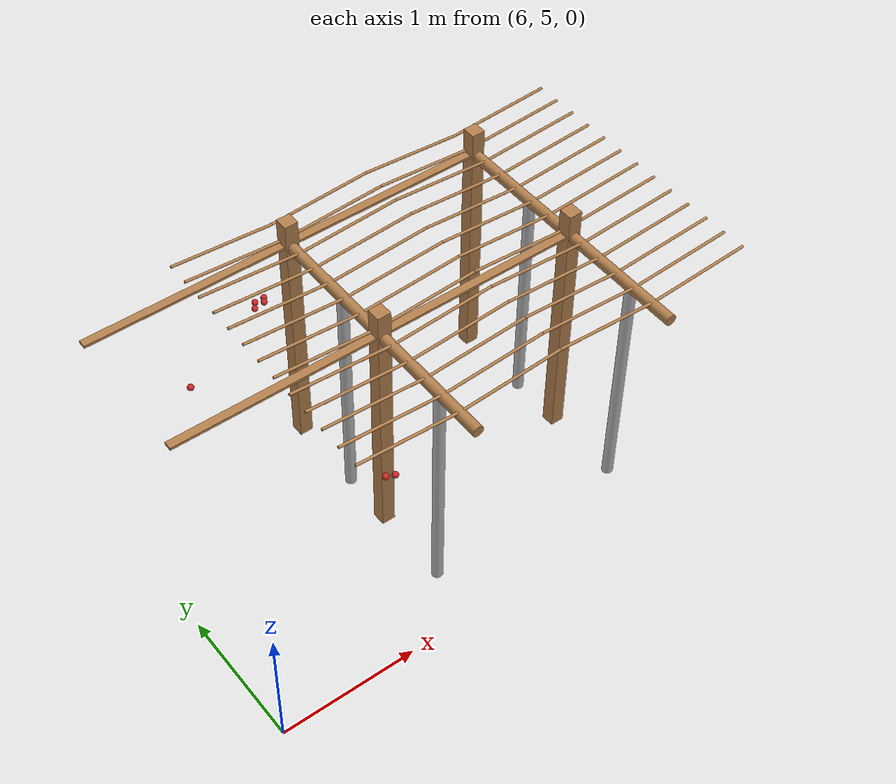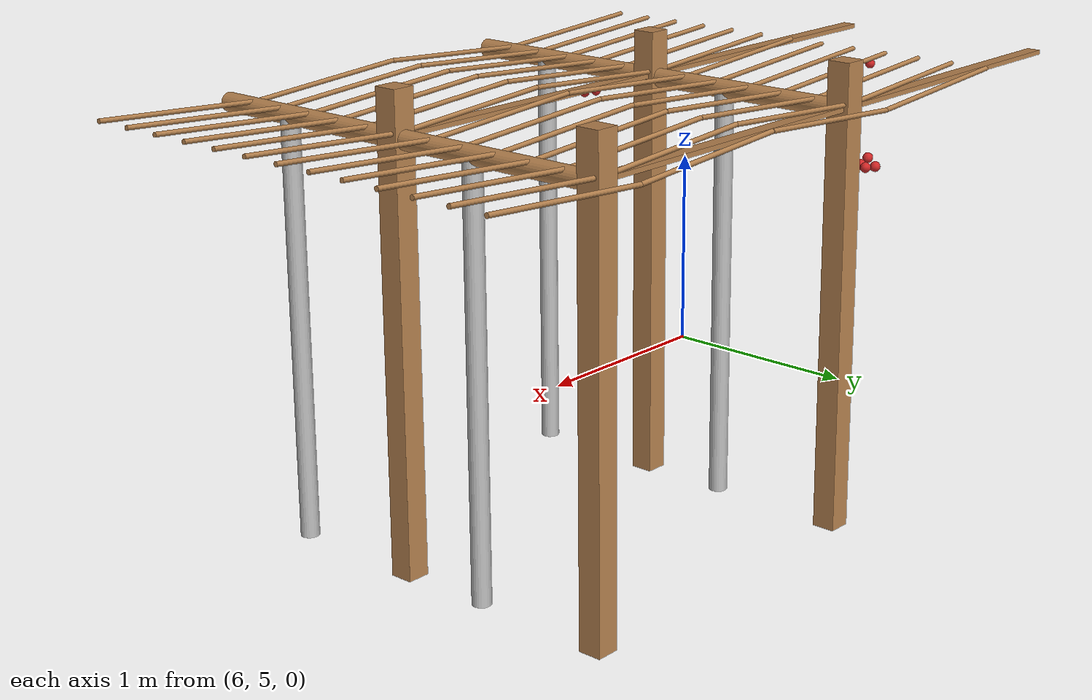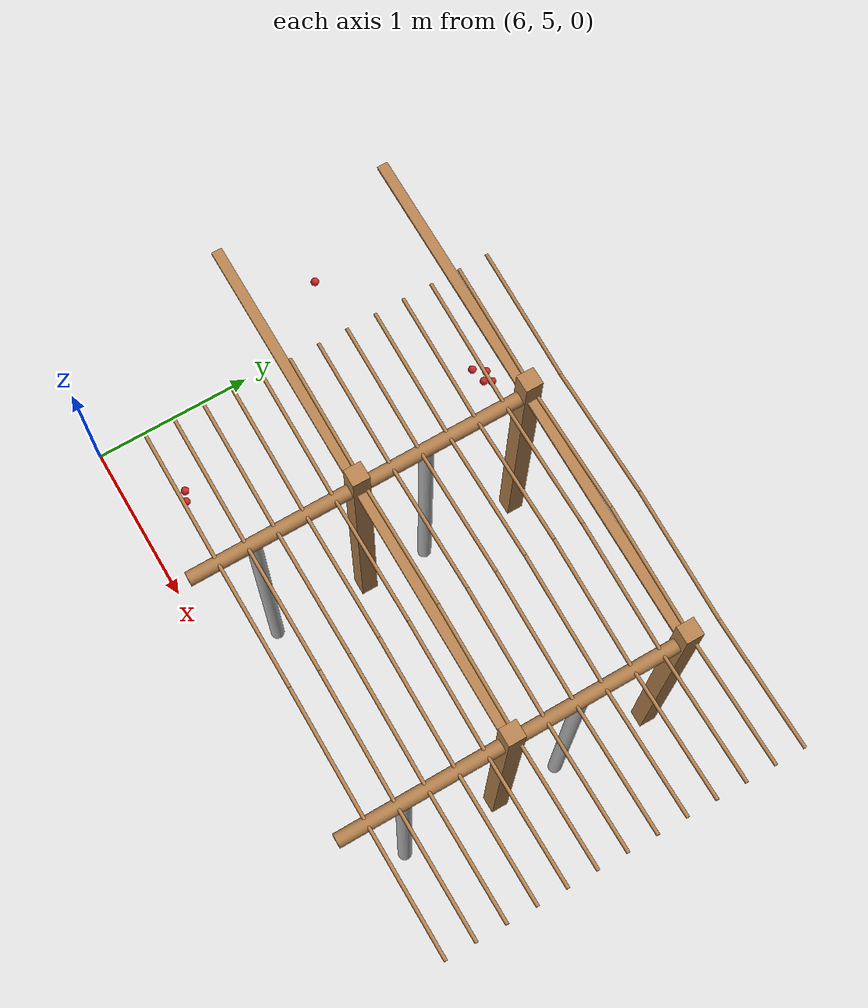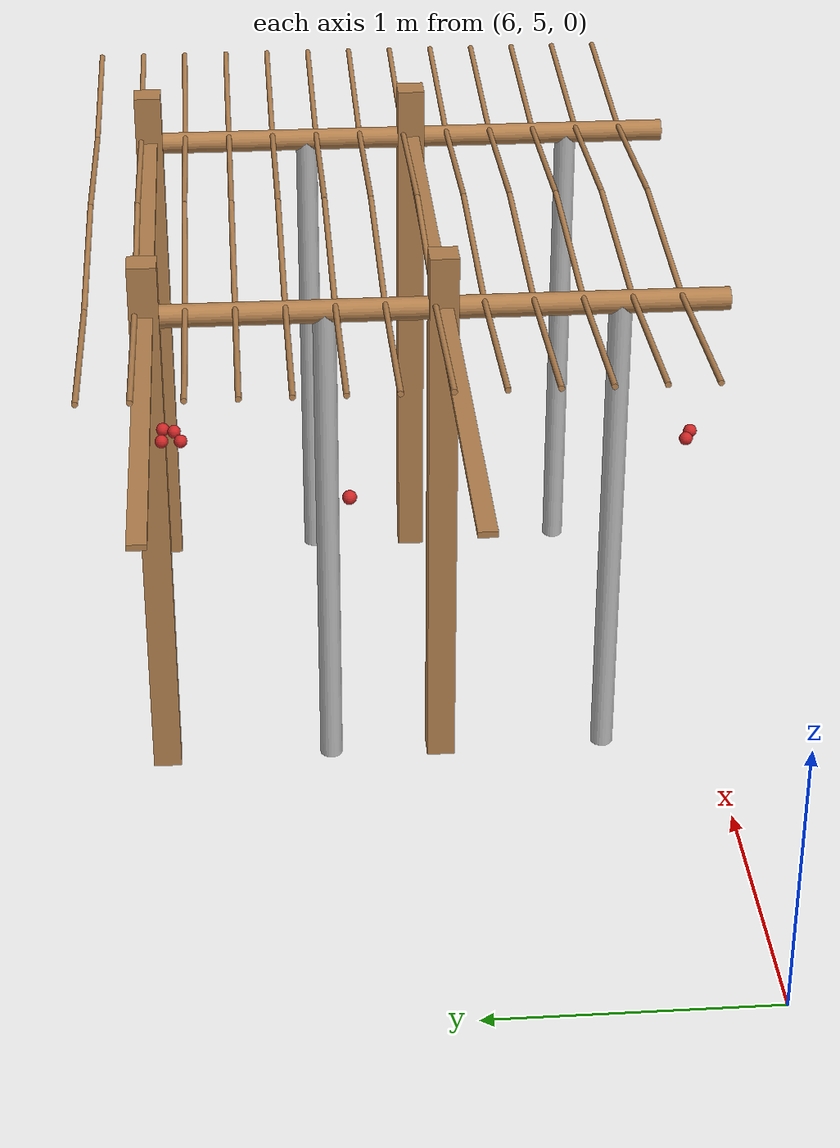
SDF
<sdf version="1.4">
 <model name="pergola">
  <include><name>post_61</name><pose>7.5 6.0 0 0 0 0</pose><uri>model://post</uri></include>
  <include><name>post_62</name><pose>7.5 7.0 0 0 0 0</pose><uri>model://post</uri></include>
  <include><name>post_72</name><pose>9.0 6.0 0 0 0 0</pose><uri>model://post</uri></include>
  <include><name>post_73</name><pose>9.0 7.0 0 0 0 0</pose><uri>model://post</uri></include>
  <link name="beam_50">
   <pose>6.75 6.0 1.81 0 0 0</pose>
   <collision name="collision"><geometry><box><size>1.5 0.06 0.02</size></box></geometry></collision>
   <visual name="visual">
    <geometry><box><size>1.5 0.06 0.02</size></box></geometry>
    <material><script><name>Gazebo/Wood</name></script></material>
   </visual>
   <inertial>
    <mass>5</mass>
    <inertia>
     <ixx>0.0016666666666666668</ixx>
     <ixy>0.0</ixy>
     <ixz>0.0</ixz>
     <iyy>0.9390000000000001</iyy>
     <iyz>0.0</iyz>
     <izz>0.9376666666666665</izz>
    </inertia>
   </inertial>
  </link>
  <link name="beam_51">
   <pose>6.75 7.0 1.81 0 0 0</pose>
   <collision name="collision"><geometry><box><size>1.5 0.06 0.02</size></box></geometry></collision>
   <visual name="visual">
    <geometry><box><size>1.5 0.06 0.02</size></box></geometry>
    <material><script><name>Gazebo/Wood</name></script></material>
   </visual>
   <inertial>
    <mass>5</mass>
    <inertia>
     <ixx>0.0016666666666666668</ixx>
     <ixy>0.0</ixy>
     <ixz>0.0</ixz>
     <iyy>0.9390000000000001</iyy>
     <iyz>0.0</iyz>
     <izz>0.9376666666666665</izz>
    </inertia>
   </inertial>
  </link>
  <link name="beam_61">
   <pose>8.25 6.0 1.81 0 0 0</pose>
   <collision name="collision"><geometry><box><size>1.5 0.06 0.02</size></box></geometry></collision>
   <visual name="visual">
    <geometry><box><size>1.5 0.06 0.02</size></box></geometry>
    <material><script><name>Gazebo/Wood</name></script></material>
   </visual>
   <inertial>
    <mass>5</mass>
    <inertia>
     <ixx>0.0016666666666666668</ixx>
     <ixy>0.0</ixy>
     <ixz>0.0</ixz>
     <iyy>0.9390000000000001</iyy>
     <iyz>0.0</iyz>
     <izz>0.9376666666666665</izz>
    </inertia>
   </inertial>
  </link>
  <link name="beam_62">
   <pose>8.25 7.0 1.81 0 0 0</pose>
   <collision name="collision"><geometry><box><size>1.5 0.06 0.02</size></box></geometry></collision>
   <visual name="visual">
    <geometry><box><size>1.5 0.06 0.02</size></box></geometry>
    <material><script><name>Gazebo/Wood</name></script></material>
   </visual>
   <inertial>
    <mass>5</mass>
    <inertia>
     <ixx>0.0016666666666666668</ixx>
     <ixy>0.0</ixy>
     <ixz>0.0</ixz>
     <iyy>0.9390000000000001</iyy>
     <iyz>0.0</iyz>
     <izz>0.9376666666666665</izz>
    </inertia>
   </inertial>
  </link>
  <include><name>tree_55</name><pose>7.5 5.4 0 0 0 0</pose><uri>model://tree_trunk</uri></include>
  <include><name>tree_56</name><pose>7.5 6.4 0 0 0 0</pose><uri>model://tree_trunk</uri></include>
  <include><name>tree_65</name><pose>9.0 5.4 0 0 0 0</pose><uri>model://tree_trunk</uri></include>
  <include><name>tree_66</name><pose>9.0 6.4 0 0 0 0</pose><uri>model://tree_trunk</uri></include>
  <link name="baseBranch_55">
   <pose>7.5 5.5 1.8 1.5707963267948966 0 0</pose>
   <collision name="collision">
    <geometry><cylinder><radius>0.04</radius><length>0.94</length></cylinder></geometry>
   </collision>
   <visual name="visual">
    <geometry><cylinder><radius>0.04</radius><length>0.94</length></cylinder></geometry>
    <material><script><name>Gazebo/WoodFloor</name></script></material>
   </visual>
   <inertial>
    <mass>10</mass>
    <inertia>
     <ixx>0.7403333333333334</ixx>
     <ixy>0.0</ixy>
     <ixz>0.0</ixz>
     <iyy>0.7403333333333334</iyy>
     <iyz>0.0</iyz>
     <izz>0.008</izz>
    </inertia>
   </inertial>
  </link>
  <link name="baseBranch_56">
   <pose>7.5 6.5 1.8 1.5707963267948966 0 0</pose>
   <collision name="collision">
    <geometry><cylinder><radius>0.04</radius><length>0.94</length></cylinder></geometry>
   </collision>
   <visual name="visual">
    <geometry><cylinder><radius>0.04</radius><length>0.94</length></cylinder></geometry>
    <material><script><name>Gazebo/WoodFloor</name></script></material>
   </visual>
   <inertial>
    <mass>10</mass>
    <inertia>
     <ixx>0.7403333333333334</ixx>
     <ixy>0.0</ixy>
     <ixz>0.0</ixz>
     <iyy>0.7403333333333334</iyy>
     <iyz>0.0</iyz>
     <izz>0.008</izz>
    </inertia>
   </inertial>
  </link>
  <link name="baseBranch_65">
   <pose>9.0 5.5 1.8 1.5707963267948966 0 0</pose>
   <collision name="collision">
    <geometry><cylinder><radius>0.04</radius><length>0.94</length></cylinder></geometry>
   </collision>
   <visual name="visual">
    <geometry><cylinder><radius>0.04</radius><length>0.94</length></cylinder></geometry>
    <material><script><name>Gazebo/WoodFloor</name></script></material>
   </visual>
   <inertial>
    <mass>10</mass>
    <inertia>
     <ixx>0.7403333333333334</ixx>
     <ixy>0.0</ixy>
     <ixz>0.0</ixz>
     <iyy>0.7403333333333334</iyy>
     <iyz>0.0</iyz>
     <izz>0.008</izz>
    </inertia>
   </inertial>
  </link>
  <link name="baseBranch_66">
   <pose>9.0 6.5 1.8 1.5707963267948966 0 0</pose>
   <collision name="collision">
    <geometry><cylinder><radius>0.04</radius><length>0.94</length></cylinder></geometry>
   </collision>
   <visual name="visual">
    <geometry><cylinder><radius>0.04</radius><length>0.94</length></cylinder></geometry>
    <material><script><name>Gazebo/WoodFloor</name></script></material>
   </visual>
   <inertial>
    <mass>10</mass>
    <inertia>
     <ixx>0.7403333333333334</ixx>
     <ixy>0.0</ixy>
     <ixz>0.0</ixz>
     <iyy>0.7403333333333334</iyy>
     <iyz>0.0</iyz>
     <izz>0.008</izz>
    </inertia>
   </inertial>
  </link>
  <link name="vine_543">
   <pose>7.125 5.196666666666666 1.85 0 -1.5042281630190728 0</pose>
   <collision name="collision">
    <geometry><cylinder><radius>0.01</radius><length>0.7516648189186453</length></cylinder></geometry>
   </collision>
   <visual name="visual">
    <geometry><cylinder><radius>0.01</radius><length>0.7516648189186453</length></cylinder></geometry>
    <material><script><name>Gazebo/WoodFloor</name></script></material>
   </visual>
   <inertial>
    <mass>5</mass>
    <inertia>
     <ixx>0.23554166666666657</ixx>
     <ixy>0.0</ixy>
     <ixz>0.0</ixz>
     <iyy>0.23554166666666657</iyy>
     <iyz>0.0</iyz>
     <izz>0.00025</izz>
    </inertia>
   </inertial>
  </link>
  <link name="vine_545">
   <pose>7.125 5.363333333333333 1.85 0 -1.5042281630190728 0</pose>
   <collision name="collision">
    <geometry><cylinder><radius>0.01</radius><length>0.7516648189186453</length></cylinder></geometry>
   </collision>
   <visual name="visual">
    <geometry><cylinder><radius>0.01</radius><length>0.7516648189186453</length></cylinder></geometry>
    <material><script><name>Gazebo/WoodFloor</name></script></material>
   </visual>
   <inertial>
    <mass>5</mass>
    <inertia>
     <ixx>0.23554166666666657</ixx>
     <ixy>0.0</ixy>
     <ixz>0.0</ixz>
     <iyy>0.23554166666666657</iyy>
     <iyz>0.0</iyz>
     <izz>0.00025</izz>
    </inertia>
   </inertial>
  </link>
  <link name="vine_547">
   <pose>7.125 5.53 1.85 0 -1.5042281630190728 0</pose>
   <collision name="collision">
    <geometry><cylinder><radius>0.01</radius><length>0.7516648189186453</length></cylinder></geometry>
   </collision>
   <visual name="visual">
    <geometry><cylinder><radius>0.01</radius><length>0.7516648189186453</length></cylinder></geometry>
    <material><script><name>Gazebo/WoodFloor</name></script></material>
   </visual>
   <inertial>
    <mass>5</mass>
    <inertia>
     <ixx>0.23554166666666657</ixx>
     <ixy>0.0</ixy>
     <ixz>0.0</ixz>
     <iyy>0.23554166666666657</iyy>
     <iyz>0.0</iyz>
     <izz>0.00025</izz>
    </inertia>
   </inertial>
  </link>
  <link name="vine_549">
   <pose>7.125 5.696666666666666 1.85 0 -1.5042281630190728 0</pose>
   <collision name="collision">
    <geometry><cylinder><radius>0.01</radius><length>0.7516648189186453</length></cylinder></geometry>
   </collision>
   <visual name="visual">
    <geometry><cylinder><radius>0.01</radius><length>0.7516648189186453</length></cylinder></geometry>
    <material><script><name>Gazebo/WoodFloor</name></script></material>
   </visual>
   <inertial>
    <mass>5</mass>
    <inertia>
     <ixx>0.23554166666666657</ixx>
     <ixy>0.0</ixy>
     <ixz>0.0</ixz>
     <iyy>0.23554166666666657</iyy>
     <iyz>0.0</iyz>
     <izz>0.00025</izz>
    </inertia>
   </inertial>
  </link>
  <link name="vine_551">
   <pose>7.125 5.863333333333333 1.85 0 -1.5042281630190728 0</pose>
   <collision name="collision">
    <geometry><cylinder><radius>0.01</radius><length>0.7516648189186453</length></cylinder></geometry>
   </collision>
   <visual name="visual">
    <geometry><cylinder><radius>0.01</radius><length>0.7516648189186453</length></cylinder></geometry>
    <material><script><name>Gazebo/WoodFloor</name></script></material>
   </visual>
   <inertial>
    <mass>5</mass>
    <inertia>
     <ixx>0.23554166666666657</ixx>
     <ixy>0.0</ixy>
     <ixz>0.0</ixz>
     <iyy>0.23554166666666657</iyy>
     <iyz>0.0</iyz>
     <izz>0.00025</izz>
    </inertia>
   </inertial>
  </link>
  <link name="vine_553">
   <pose>7.125 6.03 1.85 0 -1.5042281630190728 0</pose>
   <collision name="collision">
    <geometry><cylinder><radius>0.01</radius><length>0.7516648189186453</length></cylinder></geometry>
   </collision>
   <visual name="visual">
    <geometry><cylinder><radius>0.01</radius><length>0.7516648189186453</length></cylinder></geometry>
    <material><script><name>Gazebo/WoodFloor</name></script></material>
   </visual>
   <inertial>
    <mass>5</mass>
    <inertia>
     <ixx>0.23554166666666657</ixx>
     <ixy>0.0</ixy>
     <ixz>0.0</ixz>
     <iyy>0.23554166666666657</iyy>
     <iyz>0.0</iyz>
     <izz>0.00025</izz>
    </inertia>
   </inertial>
  </link>
  <link name="vine_555">
   <pose>7.125 6.196666666666666 1.85 0 -1.5042281630190728 0</pose>
   <collision name="collision">
    <geometry><cylinder><radius>0.01</radius><length>0.7516648189186453</length></cylinder></geometry>
   </collision>
   <visual name="visual">
    <geometry><cylinder><radius>0.01</radius><length>0.7516648189186453</length></cylinder></geometry>
    <material><script><name>Gazebo/WoodFloor</name></script></material>
   </visual>
   <inertial>
    <mass>5</mass>
    <inertia>
     <ixx>0.23554166666666657</ixx>
     <ixy>0.0</ixy>
     <ixz>0.0</ixz>
     <iyy>0.23554166666666657</iyy>
     <iyz>0.0</iyz>
     <izz>0.00025</izz>
    </inertia>
   </inertial>
  </link>
  <link name="vine_557">
   <pose>7.125 6.363333333333333 1.85 0 -1.5042281630190728 0</pose>
   <collision name="collision">
    <geometry><cylinder><radius>0.01</radius><length>0.7516648189186453</length></cylinder></geometry>
   </collision>
   <visual name="visual">
    <geometry><cylinder><radius>0.01</radius><length>0.7516648189186453</length></cylinder></geometry>
    <material><script><name>Gazebo/WoodFloor</name></script></material>
   </visual>
   <inertial>
    <mass>5</mass>
    <inertia>
     <ixx>0.23554166666666657</ixx>
     <ixy>0.0</ixy>
     <ixz>0.0</ixz>
     <iyy>0.23554166666666657</iyy>
     <iyz>0.0</iyz>
     <izz>0.00025</izz>
    </inertia>
   </inertial>
  </link>
  <link name="vine_559">
   <pose>7.125 6.53 1.85 0 -1.5042281630190728 0</pose>
   <collision name="collision">
    <geometry><cylinder><radius>0.01</radius><length>0.7516648189186453</length></cylinder></geometry>
   </collision>
   <visual name="visual">
    <geometry><cylinder><radius>0.01</radius><length>0.7516648189186453</length></cylinder></geometry>
    <material><script><name>Gazebo/WoodFloor</name></script></material>
   </visual>
   <inertial>
    <mass>5</mass>
    <inertia>
     <ixx>0.23554166666666657</ixx>
     <ixy>0.0</ixy>
     <ixz>0.0</ixz>
     <iyy>0.23554166666666657</iyy>
     <iyz>0.0</iyz>
     <izz>0.00025</izz>
    </inertia>
   </inertial>
  </link>
  <link name="vine_561">
   <pose>7.125 6.696666666666666 1.85 0 -1.5042281630190728 0</pose>
   <collision name="collision">
    <geometry><cylinder><radius>0.01</radius><length>0.7516648189186453</length></cylinder></geometry>
   </collision>
   <visual name="visual">
    <geometry><cylinder><radius>0.01</radius><length>0.7516648189186453</length></cylinder></geometry>
    <material><script><name>Gazebo/WoodFloor</name></script></material>
   </visual>
   <inertial>
    <mass>5</mass>
    <inertia>
     <ixx>0.23554166666666657</ixx>
     <ixy>0.0</ixy>
     <ixz>0.0</ixz>
     <iyy>0.23554166666666657</iyy>
     <iyz>0.0</iyz>
     <izz>0.00025</izz>
    </inertia>
   </inertial>
  </link>
  <link name="vine_563">
   <pose>7.125 6.863333333333333 1.85 0 -1.5042281630190728 0</pose>
   <collision name="collision">
    <geometry><cylinder><radius>0.01</radius><length>0.7516648189186453</length></cylinder></geometry>
   </collision>
   <visual name="visual">
    <geometry><cylinder><radius>0.01</radius><length>0.7516648189186453</length></cylinder></geometry>
    <material><script><name>Gazebo/WoodFloor</name></script></material>
   </visual>
   <inertial>
    <mass>5</mass>
    <inertia>
     <ixx>0.23554166666666657</ixx>
     <ixy>0.0</ixy>
     <ixz>0.0</ixz>
     <iyy>0.23554166666666657</iyy>
     <iyz>0.0</iyz>
     <izz>0.00025</izz>
    </inertia>
   </inertial>
  </link>
  <link name="vine_565">
   <pose>7.125 7.03 1.85 0 -1.5042281630190728 0</pose>
   <collision name="collision">
    <geometry><cylinder><radius>0.01</radius><length>0.7516648189186453</length></cylinder></geometry>
   </collision>
   <visual name="visual">
    <geometry><cylinder><radius>0.01</radius><length>0.7516648189186453</length></cylinder></geometry>
    <material><script><name>Gazebo/WoodFloor</name></script></material>
   </visual>
   <inertial>
    <mass>5</mass>
    <inertia>
     <ixx>0.23554166666666657</ixx>
     <ixy>0.0</ixy>
     <ixz>0.0</ixz>
     <iyy>0.23554166666666657</iyy>
     <iyz>0.0</iyz>
     <izz>0.00025</izz>
    </inertia>
   </inertial>
  </link>
  <link name="vine_567">
   <pose>7.125 7.196666666666666 1.85 0 -1.5042281630190728 0</pose>
   <collision name="collision">
    <geometry><cylinder><radius>0.01</radius><length>0.7516648189186453</length></cylinder></geometry>
   </collision>
   <visual name="visual">
    <geometry><cylinder><radius>0.01</radius><length>0.7516648189186453</length></cylinder></geometry>
    <material><script><name>Gazebo/WoodFloor</name></script></material>
   </visual>
   <inertial>
    <mass>5</mass>
    <inertia>
     <ixx>0.23554166666666657</ixx>
     <ixy>0.0</ixy>
     <ixz>0.0</ixz>
     <iyy>0.23554166666666657</iyy>
     <iyz>0.0</iyz>
     <izz>0.00025</izz>
    </inertia>
   </inertial>
  </link>
  <link name="vine_662">
   <pose>7.875 5.196666666666666 1.85 0 1.5042281630190728 0</pose>
   <collision name="collision">
    <geometry><cylinder><radius>0.01</radius><length>0.7516648189186453</length></cylinder></geometry>
   </collision>
   <visual name="visual">
    <geometry><cylinder><radius>0.01</radius><length>0.7516648189186453</length></cylinder></geometry>
    <material><script><name>Gazebo/WoodFloor</name></script></material>
   </visual>
   <inertial>
    <mass>5</mass>
    <inertia>
     <ixx>0.23554166666666657</ixx>
     <ixy>0.0</ixy>
     <ixz>0.0</ixz>
     <iyy>0.23554166666666657</iyy>
     <iyz>0.0</iyz>
     <izz>0.00025</izz>
    </inertia>
   </inertial>
  </link>
  <link name="vine_663">
   <pose>8.625 5.196666666666666 1.85 0 -1.5042281630190728 0</pose>
   <collision name="collision">
    <geometry><cylinder><radius>0.01</radius><length>0.7516648189186453</length></cylinder></geometry>
   </collision>
   <visual name="visual">
    <geometry><cylinder><radius>0.01</radius><length>0.7516648189186453</length></cylinder></geometry>
    <material><script><name>Gazebo/WoodFloor</name></script></material>
   </visual>
   <inertial>
    <mass>5</mass>
    <inertia>
     <ixx>0.23554166666666657</ixx>
     <ixy>0.0</ixy>
     <ixz>0.0</ixz>
     <iyy>0.23554166666666657</iyy>
     <iyz>0.0</iyz>
     <izz>0.00025</izz>
    </inertia>
   </inertial>
  </link>
  <link name="vine_664">
   <pose>7.875 5.363333333333333 1.85 0 1.5042281630190728 0</pose>
   <collision name="collision">
    <geometry><cylinder><radius>0.01</radius><length>0.7516648189186453</length></cylinder></geometry>
   </collision>
   <visual name="visual">
    <geometry><cylinder><radius>0.01</radius><length>0.7516648189186453</length></cylinder></geometry>
    <material><script><name>Gazebo/WoodFloor</name></script></material>
   </visual>
   <inertial>
    <mass>5</mass>
    <inertia>
     <ixx>0.23554166666666657</ixx>
     <ixy>0.0</ixy>
     <ixz>0.0</ixz>
     <iyy>0.23554166666666657</iyy>
     <iyz>0.0</iyz>
     <izz>0.00025</izz>
    </inertia>
   </inertial>
  </link>
  <link name="vine_665">
   <pose>8.625 5.363333333333333 1.85 0 -1.5042281630190728 0</pose>
   <collision name="collision">
    <geometry><cylinder><radius>0.01</radius><length>0.7516648189186453</length></cylinder></geometry>
   </collision>
   <visual name="visual">
    <geometry><cylinder><radius>0.01</radius><length>0.7516648189186453</length></cylinder></geometry>
    <material><script><name>Gazebo/WoodFloor</name></script></material>
   </visual>
   <inertial>
    <mass>5</mass>
    <inertia>
     <ixx>0.23554166666666657</ixx>
     <ixy>0.0</ixy>
     <ixz>0.0</ixz>
     <iyy>0.23554166666666657</iyy>
     <iyz>0.0</iyz>
     <izz>0.00025</izz>
    </inertia>
   </inertial>
  </link>
  <link name="vine_666">
   <pose>7.875 5.53 1.85 0 1.5042281630190728 0</pose>
   <collision name="collision">
    <geometry><cylinder><radius>0.01</radius><length>0.7516648189186453</length></cylinder></geometry>
   </collision>
   <visual name="visual">
    <geometry><cylinder><radius>0.01</radius><length>0.7516648189186453</length></cylinder></geometry>
    <material><script><name>Gazebo/WoodFloor</name></script></material>
   </visual>
   <inertial>
    <mass>5</mass>
    <inertia>
     <ixx>0.23554166666666657</ixx>
     <ixy>0.0</ixy>
     <ixz>0.0</ixz>
     <iyy>0.23554166666666657</iyy>
     <iyz>0.0</iyz>
     <izz>0.00025</izz>
    </inertia>
   </inertial>
  </link>
  <link name="vine_667">
   <pose>8.625 5.53 1.85 0 -1.5042281630190728 0</pose>
   <collision name="collision">
    <geometry><cylinder><radius>0.01</radius><length>0.7516648189186453</length></cylinder></geometry>
   </collision>
   <visual name="visual">
    <geometry><cylinder><radius>0.01</radius><length>0.7516648189186453</length></cylinder></geometry>
    <material><script><name>Gazebo/WoodFloor</name></script></material>
   </visual>
   <inertial>
    <mass>5</mass>
    <inertia>
     <ixx>0.23554166666666657</ixx>
     <ixy>0.0</ixy>
     <ixz>0.0</ixz>
     <iyy>0.23554166666666657</iyy>
     <iyz>0.0</iyz>
     <izz>0.00025</izz>
    </inertia>
   </inertial>
  </link>
  <link name="vine_668">
   <pose>7.875 5.696666666666666 1.85 0 1.5042281630190728 0</pose>
   <collision name="collision">
    <geometry><cylinder><radius>0.01</radius><length>0.7516648189186453</length></cylinder></geometry>
   </collision>
   <visual name="visual">
    <geometry><cylinder><radius>0.01</radius><length>0.7516648189186453</length></cylinder></geometry>
    <material><script><name>Gazebo/WoodFloor</name></script></material>
   </visual>
   <inertial>
    <mass>5</mass>
    <inertia>
     <ixx>0.23554166666666657</ixx>
     <ixy>0.0</ixy>
     <ixz>0.0</ixz>
     <iyy>0.23554166666666657</iyy>
     <iyz>0.0</iyz>
     <izz>0.00025</izz>
    </inertia>
   </inertial>
  </link>
  <link name="vine_669">
   <pose>8.625 5.696666666666666 1.85 0 -1.5042281630190728 0</pose>
   <collision name="collision">
    <geometry><cylinder><radius>0.01</radius><length>0.7516648189186453</length></cylinder></geometry>
   </collision>
   <visual name="visual">
    <geometry><cylinder><radius>0.01</radius><length>0.7516648189186453</length></cylinder></geometry>
    <material><script><name>Gazebo/WoodFloor</name></script></material>
   </visual>
   <inertial>
    <mass>5</mass>
    <inertia>
     <ixx>0.23554166666666657</ixx>
     <ixy>0.0</ixy>
     <ixz>0.0</ixz>
     <iyy>0.23554166666666657</iyy>
     <iyz>0.0</iyz>
     <izz>0.00025</izz>
    </inertia>
   </inertial>
  </link>
  <link name="vine_670">
   <pose>7.875 5.863333333333333 1.85 0 1.5042281630190728 0</pose>
   <collision name="collision">
    <geometry><cylinder><radius>0.01</radius><length>0.7516648189186453</length></cylinder></geometry>
   </collision>
   <visual name="visual">
    <geometry><cylinder><radius>0.01</radius><length>0.7516648189186453</length></cylinder></geometry>
    <material><script><name>Gazebo/WoodFloor</name></script></material>
   </visual>
   <inertial>
    <mass>5</mass>
    <inertia>
     <ixx>0.23554166666666657</ixx>
     <ixy>0.0</ixy>
     <ixz>0.0</ixz>
     <iyy>0.23554166666666657</iyy>
     <iyz>0.0</iyz>
     <izz>0.00025</izz>
    </inertia>
   </inertial>
  </link>
  <link name="vine_671">
   <pose>8.625 5.863333333333333 1.85 0 -1.5042281630190728 0</pose>
   <collision name="collision">
    <geometry><cylinder><radius>0.01</radius><length>0.7516648189186453</length></cylinder></geometry>
   </collision>
   <visual name="visual">
    <geometry><cylinder><radius>0.01</radius><length>0.7516648189186453</length></cylinder></geometry>
    <material><script><name>Gazebo/WoodFloor</name></script></material>
   </visual>
   <inertial>
    <mass>5</mass>
    <inertia>
     <ixx>0.23554166666666657</ixx>
     <ixy>0.0</ixy>
     <ixz>0.0</ixz>
     <iyy>0.23554166666666657</iyy>
     <iyz>0.0</iyz>
     <izz>0.00025</izz>
    </inertia>
   </inertial>
  </link>
  <link name="vine_672">
   <pose>7.875 6.03 1.85 0 1.5042281630190728 0</pose>
   <collision name="collision">
    <geometry><cylinder><radius>0.01</radius><length>0.7516648189186453</length></cylinder></geometry>
   </collision>
   <visual name="visual">
    <geometry><cylinder><radius>0.01</radius><length>0.7516648189186453</length></cylinder></geometry>
    <material><script><name>Gazebo/WoodFloor</name></script></material>
   </visual>
   <inertial>
    <mass>5</mass>
    <inertia>
     <ixx>0.23554166666666657</ixx>
     <ixy>0.0</ixy>
     <ixz>0.0</ixz>
     <iyy>0.23554166666666657</iyy>
     <iyz>0.0</iyz>
     <izz>0.00025</izz>
    </inertia>
   </inertial>
  </link>
  <link name="vine_673">
   <pose>8.625 6.03 1.85 0 -1.5042281630190728 0</pose>
   <collision name="collision">
    <geometry><cylinder><radius>0.01</radius><length>0.7516648189186453</length></cylinder></geometry>
   </collision>
   <visual name="visual">
    <geometry><cylinder><radius>0.01</radius><length>0.7516648189186453</length></cylinder></geometry>
    <material><script><name>Gazebo/WoodFloor</name></script></material>
   </visual>
   <inertial>
    <mass>5</mass>
    <inertia>
     <ixx>0.23554166666666657</ixx>
     <ixy>0.0</ixy>
     <ixz>0.0</ixz>
     <iyy>0.23554166666666657</iyy>
     <iyz>0.0</iyz>
     <izz>0.00025</izz>
    </inertia>
   </inertial>
  </link>
  <link name="vine_674">
   <pose>7.875 6.196666666666666 1.85 0 1.5042281630190728 0</pose>
   <collision name="collision">
    <geometry><cylinder><radius>0.01</radius><length>0.7516648189186453</length></cylinder></geometry>
   </collision>
   <visual name="visual">
    <geometry><cylinder><radius>0.01</radius><length>0.7516648189186453</length></cylinder></geometry>
    <material><script><name>Gazebo/WoodFloor</name></script></material>
   </visual>
   <inertial>
    <mass>5</mass>
    <inertia>
     <ixx>0.23554166666666657</ixx>
     <ixy>0.0</ixy>
     <ixz>0.0</ixz>
     <iyy>0.23554166666666657</iyy>
     <iyz>0.0</iyz>
     <izz>0.00025</izz>
    </inertia>
   </inertial>
  </link>
  <link name="vine_675">
   <pose>8.625 6.196666666666666 1.85 0 -1.5042281630190728 0</pose>
   <collision name="collision">
    <geometry><cylinder><radius>0.01</radius><length>0.7516648189186453</length></cylinder></geometry>
   </collision>
   <visual name="visual">
    <geometry><cylinder><radius>0.01</radius><length>0.7516648189186453</length></cylinder></geometry>
    <material><script><name>Gazebo/WoodFloor</name></script></material>
   </visual>
   <inertial>
    <mass>5</mass>
    <inertia>
     <ixx>0.23554166666666657</ixx>
     <ixy>0.0</ixy>
     <ixz>0.0</ixz>
     <iyy>0.23554166666666657</iyy>
     <iyz>0.0</iyz>
     <izz>0.00025</izz>
    </inertia>
   </inertial>
  </link>
  <link name="vine_676">
   <pose>7.875 6.363333333333333 1.85 0 1.5042281630190728 0</pose>
   <collision name="collision">
    <geometry><cylinder><radius>0.01</radius><length>0.7516648189186453</length></cylinder></geometry>
   </collision>
   <visual name="visual">
    <geometry><cylinder><radius>0.01</radius><length>0.7516648189186453</length></cylinder></geometry>
    <material><script><name>Gazebo/WoodFloor</name></script></material>
   </visual>
   <inertial>
    <mass>5</mass>
    <inertia>
     <ixx>0.23554166666666657</ixx>
     <ixy>0.0</ixy>
     <ixz>0.0</ixz>
     <iyy>0.23554166666666657</iyy>
     <iyz>0.0</iyz>
     <izz>0.00025</izz>
    </inertia>
   </inertial>
  </link>
  <link name="vine_677">
   <pose>8.625 6.363333333333333 1.85 0 -1.5042281630190728 0</pose>
   <collision name="collision">
    <geometry><cylinder><radius>0.01</radius><length>0.7516648189186453</length></cylinder></geometry>
   </collision>
   <visual name="visual">
    <geometry><cylinder><radius>0.01</radius><length>0.7516648189186453</length></cylinder></geometry>
    <material><script><name>Gazebo/WoodFloor</name></script></material>
   </visual>
   <inertial>
    <mass>5</mass>
    <inertia>
     <ixx>0.23554166666666657</ixx>
     <ixy>0.0</ixy>
     <ixz>0.0</ixz>
     <iyy>0.23554166666666657</iyy>
     <iyz>0.0</iyz>
     <izz>0.00025</izz>
    </inertia>
   </inertial>
  </link>
  <link name="vine_678">
   <pose>7.875 6.53 1.85 0 1.5042281630190728 0</pose>
   <collision name="collision">
    <geometry><cylinder><radius>0.01</radius><length>0.7516648189186453</length></cylinder></geometry>
   </collision>
   <visual name="visual">
    <geometry><cylinder><radius>0.01</radius><length>0.7516648189186453</length></cylinder></geometry>
    <material><script><name>Gazebo/WoodFloor</name></script></material>
   </visual>
   <inertial>
    <mass>5</mass>
    <inertia>
     <ixx>0.23554166666666657</ixx>
     <ixy>0.0</ixy>
     <ixz>0.0</ixz>
     <iyy>0.23554166666666657</iyy>
     <iyz>0.0</iyz>
     <izz>0.00025</izz>
    </inertia>
   </inertial>
  </link>
  <link name="vine_679">
   <pose>8.625 6.53 1.85 0 -1.5042281630190728 0</pose>
   <collision name="collision">
    <geometry><cylinder><radius>0.01</radius><length>0.7516648189186453</length></cylinder></geometry>
   </collision>
   <visual name="visual">
    <geometry><cylinder><radius>0.01</radius><length>0.7516648189186453</length></cylinder></geometry>
    <material><script><name>Gazebo/WoodFloor</name></script></material>
   </visual>
   <inertial>
    <mass>5</mass>
    <inertia>
     <ixx>0.23554166666666657</ixx>
     <ixy>0.0</ixy>
     <ixz>0.0</ixz>
     <iyy>0.23554166666666657</iyy>
     <iyz>0.0</iyz>
     <izz>0.00025</izz>
    </inertia>
   </inertial>
  </link>
  <link name="vine_680">
   <pose>7.875 6.696666666666666 1.85 0 1.5042281630190728 0</pose>
   <collision name="collision">
    <geometry><cylinder><radius>0.01</radius><length>0.7516648189186453</length></cylinder></geometry>
   </collision>
   <visual name="visual">
    <geometry><cylinder><radius>0.01</radius><length>0.7516648189186453</length></cylinder></geometry>
    <material><script><name>Gazebo/WoodFloor</name></script></material>
   </visual>
   <inertial>
    <mass>5</mass>
    <inertia>
     <ixx>0.23554166666666657</ixx>
     <ixy>0.0</ixy>
     <ixz>0.0</ixz>
     <iyy>0.23554166666666657</iyy>
     <iyz>0.0</iyz>
     <izz>0.00025</izz>
    </inertia>
   </inertial>
  </link>
  <link name="vine_681">
   <pose>8.625 6.696666666666666 1.85 0 -1.5042281630190728 0</pose>
   <collision name="collision">
    <geometry><cylinder><radius>0.01</radius><length>0.7516648189186453</length></cylinder></geometry>
   </collision>
   <visual name="visual">
    <geometry><cylinder><radius>0.01</radius><length>0.7516648189186453</length></cylinder></geometry>
    <material><script><name>Gazebo/WoodFloor</name></script></material>
   </visual>
   <inertial>
    <mass>5</mass>
    <inertia>
     <ixx>0.23554166666666657</ixx>
     <ixy>0.0</ixy>
     <ixz>0.0</ixz>
     <iyy>0.23554166666666657</iyy>
     <iyz>0.0</iyz>
     <izz>0.00025</izz>
    </inertia>
   </inertial>
  </link>
  <link name="vine_682">
   <pose>7.875 6.863333333333333 1.85 0 1.5042281630190728 0</pose>
   <collision name="collision">
    <geometry><cylinder><radius>0.01</radius><length>0.7516648189186453</length></cylinder></geometry>
   </collision>
   <visual name="visual">
    <geometry><cylinder><radius>0.01</radius><length>0.7516648189186453</length></cylinder></geometry>
    <material><script><name>Gazebo/WoodFloor</name></script></material>
   </visual>
   <inertial>
    <mass>5</mass>
    <inertia>
     <ixx>0.23554166666666657</ixx>
     <ixy>0.0</ixy>
     <ixz>0.0</ixz>
     <iyy>0.23554166666666657</iyy>
     <iyz>0.0</iyz>
     <izz>0.00025</izz>
    </inertia>
   </inertial>
  </link>
  <link name="vine_683">
   <pose>8.625 6.863333333333333 1.85 0 -1.5042281630190728 0</pose>
   <collision name="collision">
    <geometry><cylinder><radius>0.01</radius><length>0.7516648189186453</length></cylinder></geometry>
   </collision>
   <visual name="visual">
    <geometry><cylinder><radius>0.01</radius><length>0.7516648189186453</length></cylinder></geometry>
    <material><script><name>Gazebo/WoodFloor</name></script></material>
   </visual>
   <inertial>
    <mass>5</mass>
    <inertia>
     <ixx>0.23554166666666657</ixx>
     <ixy>0.0</ixy>
     <ixz>0.0</ixz>
     <iyy>0.23554166666666657</iyy>
     <iyz>0.0</iyz>
     <izz>0.00025</izz>
    </inertia>
   </inertial>
  </link>
  <link name="vine_684">
   <pose>7.875 7.03 1.85 0 1.5042281630190728 0</pose>
   <collision name="collision">
    <geometry><cylinder><radius>0.01</radius><length>0.7516648189186453</length></cylinder></geometry>
   </collision>
   <visual name="visual">
    <geometry><cylinder><radius>0.01</radius><length>0.7516648189186453</length></cylinder></geometry>
    <material><script><name>Gazebo/WoodFloor</name></script></material>
   </visual>
   <inertial>
    <mass>5</mass>
    <inertia>
     <ixx>0.23554166666666657</ixx>
     <ixy>0.0</ixy>
     <ixz>0.0</ixz>
     <iyy>0.23554166666666657</iyy>
     <iyz>0.0</iyz>
     <izz>0.00025</izz>
    </inertia>
   </inertial>
  </link>
  <link name="vine_685">
   <pose>8.625 7.03 1.85 0 -1.5042281630190728 0</pose>
   <collision name="collision">
    <geometry><cylinder><radius>0.01</radius><length>0.7516648189186453</length></cylinder></geometry>
   </collision>
   <visual name="visual">
    <geometry><cylinder><radius>0.01</radius><length>0.7516648189186453</length></cylinder></geometry>
    <material><script><name>Gazebo/WoodFloor</name></script></material>
   </visual>
   <inertial>
    <mass>5</mass>
    <inertia>
     <ixx>0.23554166666666657</ixx>
     <ixy>0.0</ixy>
     <ixz>0.0</ixz>
     <iyy>0.23554166666666657</iyy>
     <iyz>0.0</iyz>
     <izz>0.00025</izz>
    </inertia>
   </inertial>
  </link>
  <link name="vine_686">
   <pose>7.875 7.196666666666666 1.85 0 1.5042281630190728 0</pose>
   <collision name="collision">
    <geometry><cylinder><radius>0.01</radius><length>0.7516648189186453</length></cylinder></geometry>
   </collision>
   <visual name="visual">
    <geometry><cylinder><radius>0.01</radius><length>0.7516648189186453</length></cylinder></geometry>
    <material><script><name>Gazebo/WoodFloor</name></script></material>
   </visual>
   <inertial>
    <mass>5</mass>
    <inertia>
     <ixx>0.23554166666666657</ixx>
     <ixy>0.0</ixy>
     <ixz>0.0</ixz>
     <iyy>0.23554166666666657</iyy>
     <iyz>0.0</iyz>
     <izz>0.00025</izz>
    </inertia>
   </inertial>
  </link>
  <link name="vine_687">
   <pose>8.625 7.196666666666666 1.85 0 -1.5042281630190728 0</pose>
   <collision name="collision">
    <geometry><cylinder><radius>0.01</radius><length>0.7516648189186453</length></cylinder></geometry>
   </collision>
   <visual name="visual">
    <geometry><cylinder><radius>0.01</radius><length>0.7516648189186453</length></cylinder></geometry>
    <material><script><name>Gazebo/WoodFloor</name></script></material>
   </visual>
   <inertial>
    <mass>5</mass>
    <inertia>
     <ixx>0.23554166666666657</ixx>
     <ixy>0.0</ixy>
     <ixz>0.0</ixz>
     <iyy>0.23554166666666657</iyy>
     <iyz>0.0</iyz>
     <izz>0.00025</izz>
    </inertia>
   </inertial>
  </link>
  <link name="vine_782">
   <pose>9.375 5.196666666666666 1.85 0 1.5042281630190728 0</pose>
   <collision name="collision">
    <geometry><cylinder><radius>0.01</radius><length>0.7516648189186453</length></cylinder></geometry>
   </collision>
   <visual name="visual">
    <geometry><cylinder><radius>0.01</radius><length>0.7516648189186453</length></cylinder></geometry>
    <material><script><name>Gazebo/WoodFloor</name></script></material>
   </visual>
   <inertial>
    <mass>5</mass>
    <inertia>
     <ixx>0.23554166666666657</ixx>
     <ixy>0.0</ixy>
     <ixz>0.0</ixz>
     <iyy>0.23554166666666657</iyy>
     <iyz>0.0</iyz>
     <izz>0.00025</izz>
    </inertia>
   </inertial>
  </link>
  <link name="vine_784">
   <pose>9.375 5.363333333333333 1.85 0 1.5042281630190728 0</pose>
   <collision name="collision">
    <geometry><cylinder><radius>0.01</radius><length>0.7516648189186453</length></cylinder></geometry>
   </collision>
   <visual name="visual">
    <geometry><cylinder><radius>0.01</radius><length>0.7516648189186453</length></cylinder></geometry>
    <material><script><name>Gazebo/WoodFloor</name></script></material>
   </visual>
   <inertial>
    <mass>5</mass>
    <inertia>
     <ixx>0.23554166666666657</ixx>
     <ixy>0.0</ixy>
     <ixz>0.0</ixz>
     <iyy>0.23554166666666657</iyy>
     <iyz>0.0</iyz>
     <izz>0.00025</izz>
    </inertia>
   </inertial>
  </link>
  <link name="vine_786">
   <pose>9.375 5.53 1.85 0 1.5042281630190728 0</pose>
   <collision name="collision">
    <geometry><cylinder><radius>0.01</radius><length>0.7516648189186453</length></cylinder></geometry>
   </collision>
   <visual name="visual">
    <geometry><cylinder><radius>0.01</radius><length>0.7516648189186453</length></cylinder></geometry>
    <material><script><name>Gazebo/WoodFloor</name></script></material>
   </visual>
   <inertial>
    <mass>5</mass>
    <inertia>
     <ixx>0.23554166666666657</ixx>
     <ixy>0.0</ixy>
     <ixz>0.0</ixz>
     <iyy>0.23554166666666657</iyy>
     <iyz>0.0</iyz>
     <izz>0.00025</izz>
    </inertia>
   </inertial>
  </link>
  <link name="vine_788">
   <pose>9.375 5.696666666666666 1.85 0 1.5042281630190728 0</pose>
   <collision name="collision">
    <geometry><cylinder><radius>0.01</radius><length>0.7516648189186453</length></cylinder></geometry>
   </collision>
   <visual name="visual">
    <geometry><cylinder><radius>0.01</radius><length>0.7516648189186453</length></cylinder></geometry>
    <material><script><name>Gazebo/WoodFloor</name></script></material>
   </visual>
   <inertial>
    <mass>5</mass>
    <inertia>
     <ixx>0.23554166666666657</ixx>
     <ixy>0.0</ixy>
     <ixz>0.0</ixz>
     <iyy>0.23554166666666657</iyy>
     <iyz>0.0</iyz>
     <izz>0.00025</izz>
    </inertia>
   </inertial>
  </link>
  <link name="vine_790">
   <pose>9.375 5.863333333333333 1.85 0 1.5042281630190728 0</pose>
   <collision name="collision">
    <geometry><cylinder><radius>0.01</radius><length>0.7516648189186453</length></cylinder></geometry>
   </collision>
   <visual name="visual">
    <geometry><cylinder><radius>0.01</radius><length>0.7516648189186453</length></cylinder></geometry>
    <material><script><name>Gazebo/WoodFloor</name></script></material>
   </visual>
   <inertial>
    <mass>5</mass>
    <inertia>
     <ixx>0.23554166666666657</ixx>
     <ixy>0.0</ixy>
     <ixz>0.0</ixz>
     <iyy>0.23554166666666657</iyy>
     <iyz>0.0</iyz>
     <izz>0.00025</izz>
    </inertia>
   </inertial>
  </link>
  <link name="vine_792">
   <pose>9.375 6.03 1.85 0 1.5042281630190728 0</pose>
   <collision name="collision">
    <geometry><cylinder><radius>0.01</radius><length>0.7516648189186453</length></cylinder></geometry>
   </collision>
   <visual name="visual">
    <geometry><cylinder><radius>0.01</radius><length>0.7516648189186453</length></cylinder></geometry>
    <material><script><name>Gazebo/WoodFloor</name></script></material>
   </visual>
   <inertial>
    <mass>5</mass>
    <inertia>
     <ixx>0.23554166666666657</ixx>
     <ixy>0.0</ixy>
     <ixz>0.0</ixz>
     <iyy>0.23554166666666657</iyy>
     <iyz>0.0</iyz>
     <izz>0.00025</izz>
    </inertia>
   </inertial>
  </link>
  <link name="vine_794">
   <pose>9.375 6.196666666666666 1.85 0 1.5042281630190728 0</pose>
   <collision name="collision">
    <geometry><cylinder><radius>0.01</radius><length>0.7516648189186453</length></cylinder></geometry>
   </collision>
   <visual name="visual">
    <geometry><cylinder><radius>0.01</radius><length>0.7516648189186453</length></cylinder></geometry>
    <material><script><name>Gazebo/WoodFloor</name></script></material>
   </visual>
   <inertial>
    <mass>5</mass>
    <inertia>
     <ixx>0.23554166666666657</ixx>
     <ixy>0.0</ixy>
     <ixz>0.0</ixz>
     <iyy>0.23554166666666657</iyy>
     <iyz>0.0</iyz>
     <izz>0.00025</izz>
    </inertia>
   </inertial>
  </link>
  <link name="vine_796">
   <pose>9.375 6.363333333333333 1.85 0 1.5042281630190728 0</pose>
   <collision name="collision">
    <geometry><cylinder><radius>0.01</radius><length>0.7516648189186453</length></cylinder></geometry>
   </collision>
   <visual name="visual">
    <geometry><cylinder><radius>0.01</radius><length>0.7516648189186453</length></cylinder></geometry>
    <material><script><name>Gazebo/WoodFloor</name></script></material>
   </visual>
   <inertial>
    <mass>5</mass>
    <inertia>
     <ixx>0.23554166666666657</ixx>
     <ixy>0.0</ixy>
     <ixz>0.0</ixz>
     <iyy>0.23554166666666657</iyy>
     <iyz>0.0</iyz>
     <izz>0.00025</izz>
    </inertia>
   </inertial>
  </link>
  <link name="vine_798">
   <pose>9.375 6.53 1.85 0 1.5042281630190728 0</pose>
   <collision name="collision">
    <geometry><cylinder><radius>0.01</radius><length>0.7516648189186453</length></cylinder></geometry>
   </collision>
   <visual name="visual">
    <geometry><cylinder><radius>0.01</radius><length>0.7516648189186453</length></cylinder></geometry>
    <material><script><name>Gazebo/WoodFloor</name></script></material>
   </visual>
   <inertial>
    <mass>5</mass>
    <inertia>
     <ixx>0.23554166666666657</ixx>
     <ixy>0.0</ixy>
     <ixz>0.0</ixz>
     <iyy>0.23554166666666657</iyy>
     <iyz>0.0</iyz>
     <izz>0.00025</izz>
    </inertia>
   </inertial>
  </link>
  <link name="vine_800">
   <pose>9.375 6.696666666666666 1.85 0 1.5042281630190728 0</pose>
   <collision name="collision">
    <geometry><cylinder><radius>0.01</radius><length>0.7516648189186453</length></cylinder></geometry>
   </collision>
   <visual name="visual">
    <geometry><cylinder><radius>0.01</radius><length>0.7516648189186453</length></cylinder></geometry>
    <material><script><name>Gazebo/WoodFloor</name></script></material>
   </visual>
   <inertial>
    <mass>5</mass>
    <inertia>
     <ixx>0.23554166666666657</ixx>
     <ixy>0.0</ixy>
     <ixz>0.0</ixz>
     <iyy>0.23554166666666657</iyy>
     <iyz>0.0</iyz>
     <izz>0.00025</izz>
    </inertia>
   </inertial>
  </link>
  <link name="vine_802">
   <pose>9.375 6.863333333333333 1.85 0 1.5042281630190728 0</pose>
   <collision name="collision">
    <geometry><cylinder><radius>0.01</radius><length>0.7516648189186453</length></cylinder></geometry>
   </collision>
   <visual name="visual">
    <geometry><cylinder><radius>0.01</radius><length>0.7516648189186453</length></cylinder></geometry>
    <material><script><name>Gazebo/WoodFloor</name></script></material>
   </visual>
   <inertial>
    <mass>5</mass>
    <inertia>
     <ixx>0.23554166666666657</ixx>
     <ixy>0.0</ixy>
     <ixz>0.0</ixz>
     <iyy>0.23554166666666657</iyy>
     <iyz>0.0</iyz>
     <izz>0.00025</izz>
    </inertia>
   </inertial>
  </link>
  <link name="vine_804">
   <pose>9.375 7.03 1.85 0 1.5042281630190728 0</pose>
   <collision name="collision">
    <geometry><cylinder><radius>0.01</radius><length>0.7516648189186453</length></cylinder></geometry>
   </collision>
   <visual name="visual">
    <geometry><cylinder><radius>0.01</radius><length>0.7516648189186453</length></cylinder></geometry>
    <material><script><name>Gazebo/WoodFloor</name></script></material>
   </visual>
   <inertial>
    <mass>5</mass>
    <inertia>
     <ixx>0.23554166666666657</ixx>
     <ixy>0.0</ixy>
     <ixz>0.0</ixz>
     <iyy>0.23554166666666657</iyy>
     <iyz>0.0</iyz>
     <izz>0.00025</izz>
    </inertia>
   </inertial>
  </link>
  <link name="vine_806">
   <pose>9.375 7.196666666666666 1.85 0 1.5042281630190728 0</pose>
   <collision name="collision">
    <geometry><cylinder><radius>0.01</radius><length>0.7516648189186453</length></cylinder></geometry>
   </collision>
   <visual name="visual">
    <geometry><cylinder><radius>0.01</radius><length>0.7516648189186453</length></cylinder></geometry>
    <material><script><name>Gazebo/WoodFloor</name></script></material>
   </visual>
   <inertial>
    <mass>5</mass>
    <inertia>
     <ixx>0.23554166666666657</ixx>
     <ixy>0.0</ixy>
     <ixz>0.0</ixz>
     <iyy>0.23554166666666657</iyy>
     <iyz>0.0</iyz>
     <izz>0.00025</izz>
    </inertia>
   </inertial>
  </link>
  <link name="fruit_75">
   <pose>7.14717429251868 6.889410339249938 1.5168526898725339 0 0 0</pose>
   <collision name="fruit_collision_75"><geometry><sphere><radius>0.022</radius></sphere></geometry></collision>
   <visual name="visual">
    <geometry><sphere><radius>0.022</radius></sphere></geometry>
    <material><script><name>Gazebo/Red</name></script></material>
   </visual>
   <inertial>
    <mass>0.05</mass>
    <inertia>
     <ixx>9.679999999999999e-06</ixx>
     <ixy>0.0</ixy>
     <ixz>0.0</ixz>
     <iyy>9.679999999999999e-06</iyy>
     <iyz>0.0</iyz>
     <izz>9.679999999999999e-06</izz>
    </inertia>
   </inertial>
   <sensor name="fruit_contact_75" type="contact">
    <contact><collision>fruit_collision_75</collision></contact>
   </sensor>
  </link>
  <link name="fruit_172">
   <pose>6.993642360395996 5.250309478773677 1.5464138153323592 0 0 0</pose>
   <collision name="fruit_collision_172"><geometry><sphere><radius>0.022</radius></sphere></geometry></collision>
   <visual name="visual">
    <geometry><sphere><radius>0.022</radius></sphere></geometry>
    <material><script><name>Gazebo/Red</name></script></material>
   </visual>
   <inertial>
    <mass>0.05</mass>
    <inertia>
     <ixx>9.679999999999999e-06</ixx>
     <ixy>0.0</ixy>
     <ixz>0.0</ixz>
     <iyy>9.679999999999999e-06</iyy>
     <iyz>0.0</iyz>
     <izz>9.679999999999999e-06</izz>
    </inertia>
   </inertial>
   <sensor name="fruit_contact_172" type="contact">
    <contact><collision>fruit_collision_172</collision></contact>
   </sensor>
  </link>
  <link name="fruit_215">
   <pose>7.231479326407033 6.911545518882605 1.507450735554478 0 0 0</pose>
   <collision name="fruit_collision_215"><geometry><sphere><radius>0.022</radius></sphere></geometry></collision>
   <visual name="visual">
    <geometry><sphere><radius>0.022</radius></sphere></geometry>
    <material><script><name>Gazebo/Red</name></script></material>
   </visual>
   <inertial>
    <mass>0.05</mass>
    <inertia>
     <ixx>9.679999999999999e-06</ixx>
     <ixy>0.0</ixy>
     <ixz>0.0</ixz>
     <iyy>9.679999999999999e-06</iyy>
     <iyz>0.0</iyz>
     <izz>9.679999999999999e-06</izz>
    </inertia>
   </inertial>
   <sensor name="fruit_contact_215" type="contact">
    <contact><collision>fruit_collision_215</collision></contact>
   </sensor>
  </link>
  <link name="fruit_248">
   <pose>7.047978650853456 5.227860436940575 1.544750463934085 0 0 0</pose>
   <collision name="fruit_collision_248"><geometry><sphere><radius>0.022</radius></sphere></geometry></collision>
   <visual name="visual">
    <geometry><sphere><radius>0.022</radius></sphere></geometry>
    <material><script><name>Gazebo/Red</name></script></material>
   </visual>
   <inertial>
    <mass>0.05</mass>
    <inertia>
     <ixx>9.679999999999999e-06</ixx>
     <ixy>0.0</ixy>
     <ixz>0.0</ixz>
     <iyy>9.679999999999999e-06</iyy>
     <iyz>0.0</iyz>
     <izz>9.679999999999999e-06</izz>
    </inertia>
   </inertial>
   <sensor name="fruit_contact_248" type="contact">
    <contact><collision>fruit_collision_248</collision></contact>
   </sensor>
  </link>
  <link name="fruit_272">
   <pose>7.25296363916115 6.949119436363957 1.5048368326779404 0 0 0</pose>
   <collision name="fruit_collision_272"><geometry><sphere><radius>0.022</radius></sphere></geometry></collision>
   <visual name="visual">
    <geometry><sphere><radius>0.022</radius></sphere></geometry>
    <material><script><name>Gazebo/Red</name></script></material>
   </visual>
   <inertial>
    <mass>0.05</mass>
    <inertia>
     <ixx>9.679999999999999e-06</ixx>
     <ixy>0.0</ixy>
     <ixz>0.0</ixz>
     <iyy>9.679999999999999e-06</iyy>
     <iyz>0.0</iyz>
     <izz>9.679999999999999e-06</izz>
    </inertia>
   </inertial>
   <sensor name="fruit_contact_272" type="contact">
    <contact><collision>fruit_collision_272</collision></contact>
   </sensor>
  </link>
  <link name="fruit_280">
   <pose>7.186901218880812 6.953026400774331 1.4966713570595327 0 0 0</pose>
   <collision name="fruit_collision_280"><geometry><sphere><radius>0.022</radius></sphere></geometry></collision>
   <visual name="visual">
    <geometry><sphere><radius>0.022</radius></sphere></geometry>
    <material><script><name>Gazebo/Red</name></script></material>
   </visual>
   <inertial>
    <mass>0.05</mass>
    <inertia>
     <ixx>9.679999999999999e-06</ixx>
     <ixy>0.0</ixy>
     <ixz>0.0</ixz>
     <iyy>9.679999999999999e-06</iyy>
     <iyz>0.0</iyz>
     <izz>9.679999999999999e-06</izz>
    </inertia>
   </inertial>
   <sensor name="fruit_contact_280" type="contact">
    <contact><collision>fruit_collision_280</collision></contact>
   </sensor>
  </link>
  <link name="fruit_408">
   <pose>6.376667919716803 6.376024007194809 1.7303708551336492 0 0 0</pose>
   <collision name="fruit_collision_408"><geometry><sphere><radius>0.022</radius></sphere></geometry></collision>
   <visual name="visual">
    <geometry><sphere><radius>0.022</radius></sphere></geometry>
    <material><script><name>Gazebo/Red</name></script></material>
   </visual>
   <inertial>
    <mass>0.05</mass>
    <inertia>
     <ixx>9.679999999999999e-06</ixx>
     <ixy>0.0</ixy>
     <ixz>0.0</ixz>
     <iyy>9.679999999999999e-06</iyy>
     <iyz>0.0</iyz>
     <izz>9.679999999999999e-06</izz>
    </inertia>
   </inertial>
   <sensor name="fruit_contact_408" type="contact">
    <contact><collision>fruit_collision_408</collision></contact>
   </sensor>
  </link>
 </model>
</sdf>
